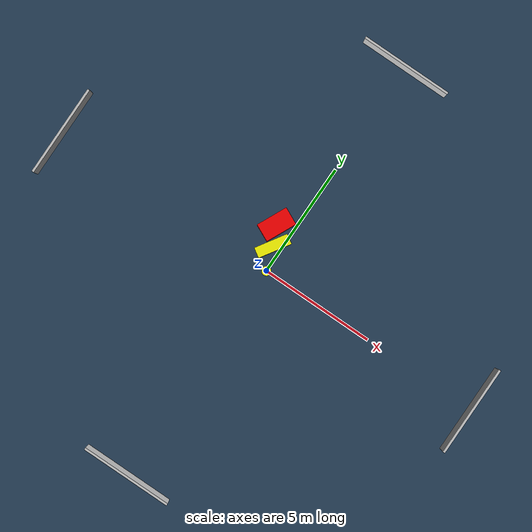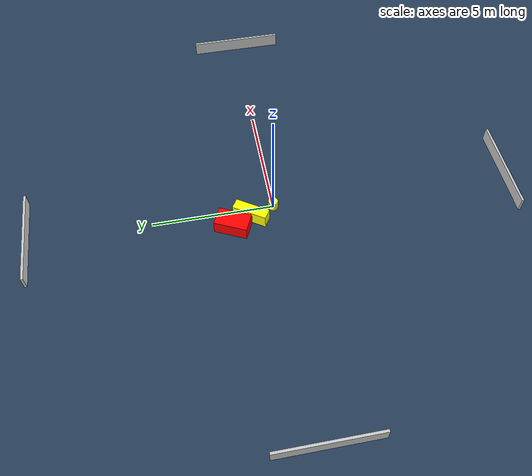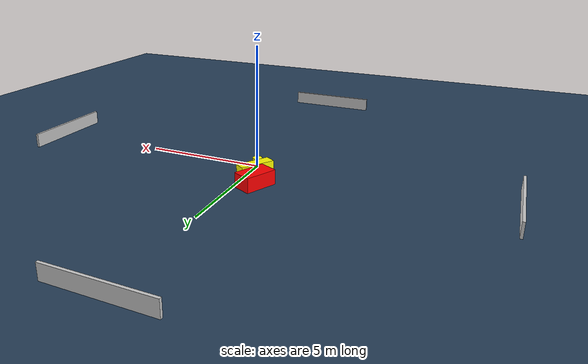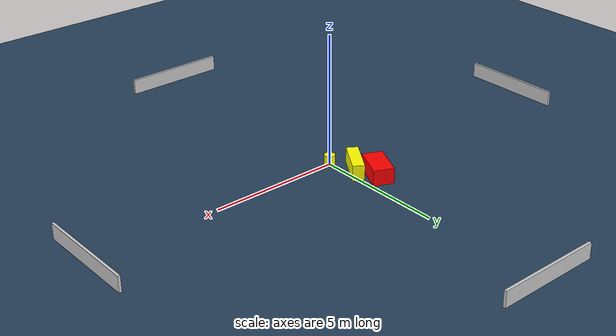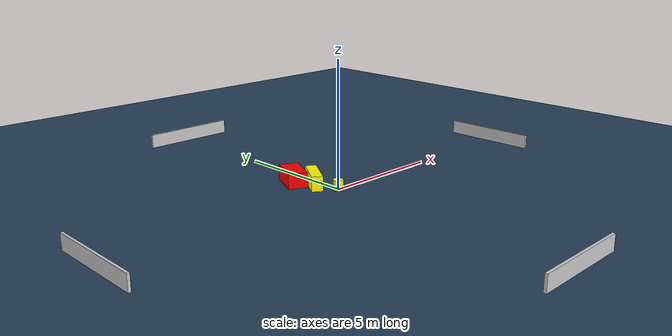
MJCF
<?xml version="1.0" ?>
<mujoco model="generated_environment">
  <option timestep="0.01" integrator="RK4" cone="elliptic"/>
  <default>
    <geom density="1"/>
  </default>
  <asset>
    <texture builtin="gradient" height="3072" name="skybox" rgb1="0.3 0.5 0.7" rgb2="0 0 0" type="skybox" width="512"/>
    <texture builtin="checker" height="300" name="groundplane" rgb1="0.2 0.3 0.4" rgb2="0.1 0.2 0.3" type="2d" width="300"/>
    <material name="groundplane" reflectance="0.2" texrepeat="5 5" texture="groundplane"/>
  </asset>
  <worldbody>
    <light dir="0 0 -1" directional="true" pos="0 0 1.5"/>
    <geom condim="3" friction="0.5 0.005 0.001" material="groundplane" name="floor" pos="0 0 0" size="0 0 0.05" type="plane"/>
    <body name="walls">
      <geom name="wall_1" condim="4" pos="-10.0 0.0 0.3" rgba="0.800000011920929 0.800000011920929 0.800000011920929 1.0" size="0.05 2.0 0.3" type="box"/>
      <geom name="wall_2" condim="4" pos="10.0 0.0 0.3" rgba="0.800000011920929 0.800000011920929 0.800000011920929 1.0" size="0.05 2.0 0.3" type="box"/>
      <geom name="wall_3" condim="4" pos="0.0 -10.0 0.3" rgba="0.800000011920929 0.800000011920929 0.800000011920929 1.0" size="2.0 0.05 0.3" type="box"/>
      <geom name="wall_4" condim="4" pos="0.0 10.0 0.3" rgba="0.800000011920929 0.800000011920929 0.800000011920929 1.0" size="2.0 0.05 0.3" type="box"/>
    </body>
    <body name="robot">
      <joint name="joint_x" type="slide" pos="0 0 0" axis="1 0 0"/>
      <joint name="joint_y" type="slide" pos="0 0 0" axis="0 1 0"/>
      <geom name="robot" type="cylinder" pos="0.0 0.0 0.2" size="0.2 0.2 0.0" mass="5.0" friction="1.0 0.005 0.0001" condim="4" rgba="1.0 1.0 0.0 1.0"/>
    </body>
    <body name="obstacle_1_movable">
      <geom name="obstacle_1_movable" condim="4" pos="-0.35052279551290444 0.9826759590302098 0.3" euler="0 0 147.26103322969422" friction="0.0 0.005 0.001" rgba="1.0 1.0 0.0 1.0" size="0.22223217305663007 0.7233253950612504 0.3" type="box" mass="0.1"/>
      <joint type="free"/>
    </body>
    <body name="obstacle_2_static">
      <geom name="obstacle_2_static" condim="4" pos="-0.7166241761475851 1.7782873988133676 0.3" euler="0 0 334.7442192568057" friction="0.0 0.005 0.001" rgba="1.0 0.0 0.0 1.0" size="0.38934738865211116 0.6821062996007226 0.3" type="box"/>
    </body>
  </worldbody>
  <actuator>
    <motor name="actuator_x" joint="joint_x" gear="1" ctrlrange="-1 1"/>
    <motor name="actuator_y" joint="joint_y" gear="1" ctrlrange="-1 1"/>
  </actuator>
</mujoco>
